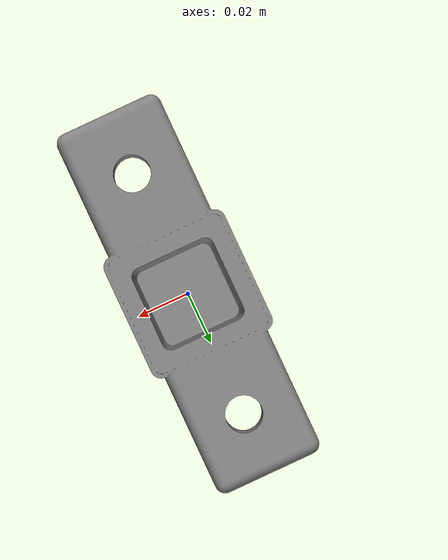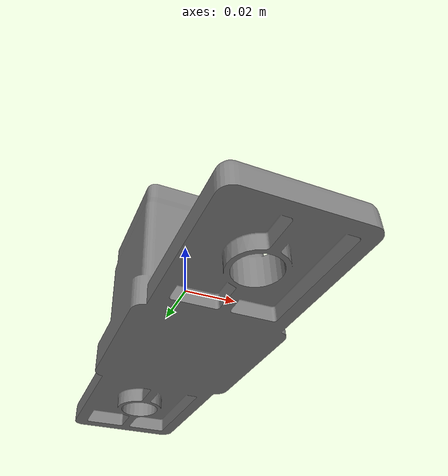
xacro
<?xml version="1.0"?>
<robot name="t_connector" xmlns:xacro="http://ros.org/wiki/xacro">

  <!-- t_connector center of obj/stl -->
  <link name="t_connector">
        <visual>
        <geometry>
          <mesh filename="file:///objects/t_connector/meshes/t_connector.stl">
            <scale>1 1 1</scale>
          </mesh>
        </geometry>
        <material name="grey">
          <color rgba="0.5 0.5 0.5 1.0"/>
        </material>
      </visual>
  </link>

  <!-- t_connector grasping_frame -->
  <link name="t_connector_grasping_frame">
    </link>

  <joint name="t_connector_to_t_connector_grasping_frame" type="fixed">
    <origin xyz="0.0 0.0 0.03" rpy="0 0 0"/>
    <parent link="t_connector"/>
    <child link="t_connector_grasping_frame" />
  </joint>

  <!-- t_connector base -->
  <link name="t_connector_base">
    </link>

  <joint name="t_connector_to_t_connector_base" type="fixed">
    <origin xyz="0.0 0.0 -0.0264" rpy="0 0 0"/>
    <parent link="t_connector"/>
    <child link="t_connector_base" />
  </joint>

  <!-- t_connector assembly frame -->
  <link name="t_connector_assembly_connector_plate">
    </link>

  <joint name="t_connector_base_to_t_connector_assembly_connector_plate" type="fixed">
    <origin xyz="0.0 0.0 0.0" rpy="0 0 0"/>
    <parent link="t_connector_base"/>
    <child link="t_connector_assembly_connector_plate" />
  </joint>

</robot>
